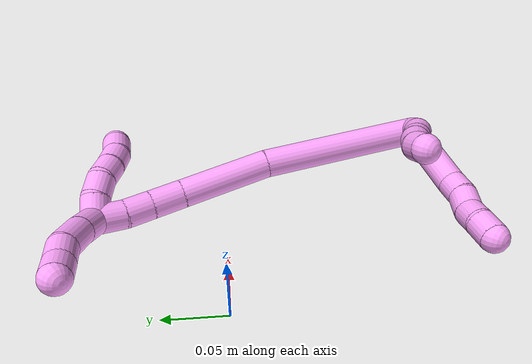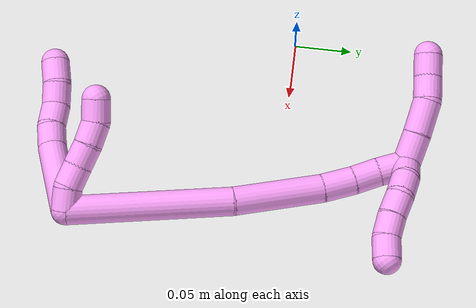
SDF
<sdf version="1.7">
 <world name="default">
  <model name="4">
   <static>0</static>
   <link name="4">
    <collision name="collision-cylinder-e_1_2_8">
     <pose>-0.016636 -0.003118 -0.029943 3.03785 -0.504855 -2.74433</pose>
     <geometry><cylinder><radius>0.0125</radius><length>0.068791</length></cylinder></geometry>
     <surface>
      <friction><ode><mu>1.16</mu><mu2>1.16</mu2><slip1>0</slip1><slip2>0</slip2></ode></friction>
      <contact><ode><kp>1e+06</kp><kd>1</kd><max_vel>0</max_vel><min_depth>0.001</min_depth></ode></contact>
     </surface>
    </collision>
    <visual name="visual-cylinder-e_1_2_8">
     <pose>-0.016636 -0.003118 -0.029943 3.03785 -0.504855 -2.74433</pose>
     <geometry><cylinder><radius>0.0125</radius><length>0.068791</length></cylinder></geometry>
     <material><ambient>1 0.65098 0.996078 1</ambient></material>
    </visual>
    <collision name="collision-cylinder-e_2_8_9">
     <pose>-0.036642 -0.009907 -0.068576 2.74184 -0.34302 -1.41481</pose>
     <geometry><cylinder><radius>0.0125</radius><length>0.020036</length></cylinder></geometry>
     <surface>
      <friction><ode><mu>1.16</mu><mu2>1.16</mu2><slip1>0</slip1><slip2>0</slip2></ode></friction>
      <contact><ode><kp>1e+06</kp><kd>1</kd><max_vel>0</max_vel><min_depth>0.001</min_depth></ode></contact>
     </surface>
    </collision>
    <visual name="visual-cylinder-e_2_8_9">
     <pose>-0.036642 -0.009907 -0.068576 2.74184 -0.34302 -1.41481</pose>
     <geometry><cylinder><radius>0.0125</radius><length>0.020036</length></cylinder></geometry>
     <material><ambient>1 0.65098 0.996078 1</ambient></material>
    </visual>
    <collision name="collision-cylinder-e_3_9_10">
     <pose>-0.045392 -0.018161 -0.084599 2.58307 -0.556603 -1.56716</pose>
     <geometry><cylinder><radius>0.0125</radius><length>0.020367</length></cylinder></geometry>
     <surface>
      <friction><ode><mu>1.16</mu><mu2>1.16</mu2><slip1>0</slip1><slip2>0</slip2></ode></friction>
      <contact><ode><kp>1e+06</kp><kd>1</kd><max_vel>0</max_vel><min_depth>0.001</min_depth></ode></contact>
     </surface>
    </collision>
    <visual name="visual-cylinder-e_3_9_10">
     <pose>-0.045392 -0.018161 -0.084599 2.58307 -0.556603 -1.56716</pose>
     <geometry><cylinder><radius>0.0125</radius><length>0.020367</length></cylinder></geometry>
     <material><ambient>1 0.65098 0.996078 1</ambient></material>
    </visual>
    <collision name="collision-cylinder-e_4_10_11">
     <pose>-0.052935 -0.028258 -0.100265 2.55698 -0.213166 -0.68319</pose>
     <geometry><cylinder><radius>0.0125</radius><length>0.02045</length></cylinder></geometry>
     <surface>
      <friction><ode><mu>1.16</mu><mu2>1.16</mu2><slip1>0</slip1><slip2>0</slip2></ode></friction>
      <contact><ode><kp>1e+06</kp><kd>1</kd><max_vel>0</max_vel><min_depth>0.001</min_depth></ode></contact>
     </surface>
    </collision>
    <visual name="visual-cylinder-e_4_10_11">
     <pose>-0.052935 -0.028258 -0.100265 2.55698 -0.213166 -0.68319</pose>
     <geometry><cylinder><radius>0.0125</radius><length>0.02045</length></cylinder></geometry>
     <material><ambient>1 0.65098 0.996078 1</ambient></material>
    </visual>
    <collision name="collision-cylinder-e_5_11_6">
     <pose>-0.058379 -0.03724 -0.117588 2.77348 -0.328211 -1.454</pose>
     <geometry><cylinder><radius>0.0125</radius><length>0.020356</length></cylinder></geometry>
     <surface>
      <friction><ode><mu>1.16</mu><mu2>1.16</mu2><slip1>0</slip1><slip2>0</slip2></ode></friction>
      <contact><ode><kp>1e+06</kp><kd>1</kd><max_vel>0</max_vel><min_depth>0.001</min_depth></ode></contact>
     </surface>
    </collision>
    <visual name="visual-cylinder-e_5_11_6">
     <pose>-0.058379 -0.03724 -0.117588 2.77348 -0.328211 -1.454</pose>
     <geometry><cylinder><radius>0.0125</radius><length>0.020356</length></cylinder></geometry>
     <material><ambient>1 0.65098 0.996078 1</ambient></material>
    </visual>
    <collision name="collision-cylinder-e_1_2_12">
     <pose>0.000109 -0.007025 -0.007116 2.36263 0.010948 0.026673</pose>
     <geometry><cylinder><radius>0.0125</radius><length>0.02</length></cylinder></geometry>
     <surface>
      <friction><ode><mu>1.16</mu><mu2>1.16</mu2><slip1>0</slip1><slip2>0</slip2></ode></friction>
      <contact><ode><kp>1e+06</kp><kd>1</kd><max_vel>0</max_vel><min_depth>0.001</min_depth></ode></contact>
     </surface>
    </collision>
    <visual name="visual-cylinder-e_1_2_12">
     <pose>0.000109 -0.007025 -0.007116 2.36263 0.010948 0.026673</pose>
     <geometry><cylinder><radius>0.0125</radius><length>0.02</length></cylinder></geometry>
     <material><ambient>1 0.65098 0.996078 1</ambient></material>
    </visual>
    <collision name="collision-cylinder-e_2_12_13">
     <pose>-0.002312 -0.022221 -0.019411 2.13569 -0.255867 -0.459396</pose>
     <geometry><cylinder><radius>0.0125</radius><length>0.02</length></cylinder></geometry>
     <surface>
      <friction><ode><mu>1.16</mu><mu2>1.16</mu2><slip1>0</slip1><slip2>0</slip2></ode></friction>
      <contact><ode><kp>1e+06</kp><kd>1</kd><max_vel>0</max_vel><min_depth>0.001</min_depth></ode></contact>
     </surface>
    </collision>
    <visual name="visual-cylinder-e_2_12_13">
     <pose>-0.002312 -0.022221 -0.019411 2.13569 -0.255867 -0.459396</pose>
     <geometry><cylinder><radius>0.0125</radius><length>0.02</length></cylinder></geometry>
     <material><ambient>1 0.65098 0.996078 1</ambient></material>
    </visual>
    <collision name="collision-cylinder-e_3_13_14">
     <pose>-0.006665 -0.038944 -0.029444 2.08703 -0.183233 -0.312989</pose>
     <geometry><cylinder><radius>0.0125</radius><length>0.02</length></cylinder></geometry>
     <surface>
      <friction><ode><mu>1.16</mu><mu2>1.16</mu2><slip1>0</slip1><slip2>0</slip2></ode></friction>
      <contact><ode><kp>1e+06</kp><kd>1</kd><max_vel>0</max_vel><min_depth>0.001</min_depth></ode></contact>
     </surface>
    </collision>
    <visual name="visual-cylinder-e_3_13_14">
     <pose>-0.006665 -0.038944 -0.029444 2.08703 -0.183233 -0.312989</pose>
     <geometry><cylinder><radius>0.0125</radius><length>0.02</length></cylinder></geometry>
     <material><ambient>1 0.65098 0.996078 1</ambient></material>
    </visual>
    <collision name="collision-cylinder-e_4_14_15">
     <pose>-0.010814 -0.055211 -0.040218 2.22531 -0.234824 -0.469565</pose>
     <geometry><cylinder><radius>0.0125</radius><length>0.02</length></cylinder></geometry>
     <surface>
      <friction><ode><mu>1.16</mu><mu2>1.16</mu2><slip1>0</slip1><slip2>0</slip2></ode></friction>
      <contact><ode><kp>1e+06</kp><kd>1</kd><max_vel>0</max_vel><min_depth>0.001</min_depth></ode></contact>
     </surface>
    </collision>
    <visual name="visual-cylinder-e_4_14_15">
     <pose>-0.010814 -0.055211 -0.040218 2.22531 -0.234824 -0.469565</pose>
     <geometry><cylinder><radius>0.0125</radius><length>0.02</length></cylinder></geometry>
     <material><ambient>1 0.65098 0.996078 1</ambient></material>
    </visual>
    <collision name="collision-cylinder-e_5_15_5">
     <pose>-0.013229 -0.069054 -0.054041 2.48211 -0.008827 -0.025791</pose>
     <geometry><cylinder><radius>0.0125</radius><length>0.02</length></cylinder></geometry>
     <surface>
      <friction><ode><mu>1.16</mu><mu2>1.16</mu2><slip1>0</slip1><slip2>0</slip2></ode></friction>
      <contact><ode><kp>1e+06</kp><kd>1</kd><max_vel>0</max_vel><min_depth>0.001</min_depth></ode></contact>
     </surface>
    </collision>
    <visual name="visual-cylinder-e_5_15_5">
     <pose>-0.013229 -0.069054 -0.054041 2.48211 -0.008827 -0.025791</pose>
     <geometry><cylinder><radius>0.0125</radius><length>0.02</length></cylinder></geometry>
     <material><ambient>1 0.65098 0.996078 1</ambient></material>
    </visual>
    <collision name="collision-cylinder-e_1_2_16">
     <pose>-0.035514 -0.051922 0.034658 0.982219 -0.517224 -0.28109</pose>
     <geometry><cylinder><radius>0.0125</radius><length>0.143643</length></cylinder></geometry>
     <surface>
      <friction><ode><mu>1.16</mu><mu2>1.16</mu2><slip1>0</slip1><slip2>0</slip2></ode></friction>
      <contact><ode><kp>1e+06</kp><kd>1</kd><max_vel>0</max_vel><min_depth>0.001</min_depth></ode></contact>
     </surface>
    </collision>
    <visual name="visual-cylinder-e_1_2_16">
     <pose>-0.035514 -0.051922 0.034658 0.982219 -0.517224 -0.28109</pose>
     <geometry><cylinder><radius>0.0125</radius><length>0.143643</length></cylinder></geometry>
     <material><ambient>1 0.65098 0.996078 1</ambient></material>
    </visual>
    <collision name="collision-cylinder-e_2_16_17">
     <pose>-0.094105 -0.13236 0.084372 1.08501 -0.621167 -0.382264</pose>
     <geometry><cylinder><radius>0.0125</radius><length>0.079306</length></cylinder></geometry>
     <surface>
      <friction><ode><mu>1.16</mu><mu2>1.16</mu2><slip1>0</slip1><slip2>0</slip2></ode></friction>
      <contact><ode><kp>1e+06</kp><kd>1</kd><max_vel>0</max_vel><min_depth>0.001</min_depth></ode></contact>
     </surface>
    </collision>
    <visual name="visual-cylinder-e_2_16_17">
     <pose>-0.094105 -0.13236 0.084372 1.08501 -0.621167 -0.382264</pose>
     <geometry><cylinder><radius>0.0125</radius><length>0.079306</length></cylinder></geometry>
     <material><ambient>1 0.65098 0.996078 1</ambient></material>
    </visual>
    <collision name="collision-cylinder-e_3_17_18">
     <pose>-0.125134 -0.172052 0.103674 1.20769 -0.586894 -0.410987</pose>
     <geometry><cylinder><radius>0.0125</radius><length>0.028718</length></cylinder></geometry>
     <surface>
      <friction><ode><mu>1.16</mu><mu2>1.16</mu2><slip1>0</slip1><slip2>0</slip2></ode></friction>
      <contact><ode><kp>1e+06</kp><kd>1</kd><max_vel>0</max_vel><min_depth>0.001</min_depth></ode></contact>
     </surface>
    </collision>
    <visual name="visual-cylinder-e_3_17_18">
     <pose>-0.125134 -0.172052 0.103674 1.20769 -0.586894 -0.410987</pose>
     <geometry><cylinder><radius>0.0125</radius><length>0.028718</length></cylinder></geometry>
     <material><ambient>1 0.65098 0.996078 1</ambient></material>
    </visual>
    <collision name="collision-cylinder-e_4_18_19">
     <pose>-0.139254 -0.19284 0.110648 1.29436 -0.55313 -0.422626</pose>
     <geometry><cylinder><radius>0.0125</radius><length>0.023482</length></cylinder></geometry>
     <surface>
      <friction><ode><mu>1.16</mu><mu2>1.16</mu2><slip1>0</slip1><slip2>0</slip2></ode></friction>
      <contact><ode><kp>1e+06</kp><kd>1</kd><max_vel>0</max_vel><min_depth>0.001</min_depth></ode></contact>
     </surface>
    </collision>
    <visual name="visual-cylinder-e_4_18_19">
     <pose>-0.139254 -0.19284 0.110648 1.29436 -0.55313 -0.422626</pose>
     <geometry><cylinder><radius>0.0125</radius><length>0.023482</length></cylinder></geometry>
     <material><ambient>1 0.65098 0.996078 1</ambient></material>
    </visual>
    <collision name="collision-cylinder-e_5_19_1">
     <pose>-0.150589 -0.213047 0.1173 1.21594 -0.428881 -0.300831</pose>
     <geometry><cylinder><radius>0.0125</radius><length>0.024851</length></cylinder></geometry>
     <surface>
      <friction><ode><mu>1.16</mu><mu2>1.16</mu2><slip1>0</slip1><slip2>0</slip2></ode></friction>
      <contact><ode><kp>1e+06</kp><kd>1</kd><max_vel>0</max_vel><min_depth>0.001</min_depth></ode></contact>
     </surface>
    </collision>
    <visual name="visual-cylinder-e_5_19_1">
     <pose>-0.150589 -0.213047 0.1173 1.21594 -0.428881 -0.300831</pose>
     <geometry><cylinder><radius>0.0125</radius><length>0.024851</length></cylinder></geometry>
     <material><ambient>1 0.65098 0.996078 1</ambient></material>
    </visual>
    <collision name="collision-cylinder-e_1_1_20">
     <pose>-0.14792 -0.222364 0.127306 -0.207295 0.900481 -0.100472</pose>
     <geometry><cylinder><radius>0.0125</radius><length>0.02</length></cylinder></geometry>
     <surface>
      <friction><ode><mu>1.16</mu><mu2>1.16</mu2><slip1>0</slip1><slip2>0</slip2></ode></friction>
      <contact><ode><kp>1e+06</kp><kd>1</kd><max_vel>0</max_vel><min_depth>0.001</min_depth></ode></contact>
     </surface>
    </collision>
    <visual name="visual-cylinder-e_1_1_20">
     <pose>-0.14792 -0.222364 0.127306 -0.207295 0.900481 -0.100472</pose>
     <geometry><cylinder><radius>0.0125</radius><length>0.02</length></cylinder></geometry>
     <material><ambient>1 0.65098 0.996078 1</ambient></material>
    </visual>
    <collision name="collision-cylinder-e_2_20_21">
     <pose>-0.132862 -0.216997 0.138966 -0.632284 0.806889 -0.277468</pose>
     <geometry><cylinder><radius>0.0125</radius><length>0.02</length></cylinder></geometry>
     <surface>
      <friction><ode><mu>1.16</mu><mu2>1.16</mu2><slip1>0</slip1><slip2>0</slip2></ode></friction>
      <contact><ode><kp>1e+06</kp><kd>1</kd><max_vel>0</max_vel><min_depth>0.001</min_depth></ode></contact>
     </surface>
    </collision>
    <visual name="visual-cylinder-e_2_20_21">
     <pose>-0.132862 -0.216997 0.138966 -0.632284 0.806889 -0.277468</pose>
     <geometry><cylinder><radius>0.0125</radius><length>0.02</length></cylinder></geometry>
     <material><ambient>1 0.65098 0.996078 1</ambient></material>
    </visual>
    <collision name="collision-cylinder-e_3_21_22">
     <pose>-0.120621 -0.206366 0.150202 -0.857979 0.525929 -0.245029</pose>
     <geometry><cylinder><radius>0.0125</radius><length>0.02</length></cylinder></geometry>
     <surface>
      <friction><ode><mu>1.16</mu><mu2>1.16</mu2><slip1>0</slip1><slip2>0</slip2></ode></friction>
      <contact><ode><kp>1e+06</kp><kd>1</kd><max_vel>0</max_vel><min_depth>0.001</min_depth></ode></contact>
     </surface>
    </collision>
    <visual name="visual-cylinder-e_3_21_22">
     <pose>-0.120621 -0.206366 0.150202 -0.857979 0.525929 -0.245029</pose>
     <geometry><cylinder><radius>0.0125</radius><length>0.02</length></cylinder></geometry>
     <material><ambient>1 0.65098 0.996078 1</ambient></material>
    </visual>
    <collision name="collision-cylinder-e_4_22_23">
     <pose>-0.111273 -0.193693 0.162467 -0.747823 0.447519 -0.178111</pose>
     <geometry><cylinder><radius>0.0125</radius><length>0.02</length></cylinder></geometry>
     <surface>
      <friction><ode><mu>1.16</mu><mu2>1.16</mu2><slip1>0</slip1><slip2>0</slip2></ode></friction>
      <contact><ode><kp>1e+06</kp><kd>1</kd><max_vel>0</max_vel><min_depth>0.001</min_depth></ode></contact>
     </surface>
    </collision>
    <visual name="visual-cylinder-e_4_22_23">
     <pose>-0.111273 -0.193693 0.162467 -0.747823 0.447519 -0.178111</pose>
     <geometry><cylinder><radius>0.0125</radius><length>0.02</length></cylinder></geometry>
     <material><ambient>1 0.65098 0.996078 1</ambient></material>
    </visual>
    <collision name="collision-cylinder-e_5_23_4">
     <pose>-0.103307 -0.183357 0.177388 -0.468413 0.372386 -0.089826</pose>
     <geometry><cylinder><radius>0.0125</radius><length>0.02</length></cylinder></geometry>
     <surface>
      <friction><ode><mu>1.16</mu><mu2>1.16</mu2><slip1>0</slip1><slip2>0</slip2></ode></friction>
      <contact><ode><kp>1e+06</kp><kd>1</kd><max_vel>0</max_vel><min_depth>0.001</min_depth></ode></contact>
     </surface>
    </collision>
    <visual name="visual-cylinder-e_5_23_4">
     <pose>-0.103307 -0.183357 0.177388 -0.468413 0.372386 -0.089826</pose>
     <geometry><cylinder><radius>0.0125</radius><length>0.02</length></cylinder></geometry>
     <material><ambient>1 0.65098 0.996078 1</ambient></material>
    </visual>
    <collision name="collision-cylinder-e_1_1_24">
     <pose>-0.158403 -0.234864 0.113182 2.19277 -0.189395 -0.365784</pose>
     <geometry><cylinder><radius>0.0125</radius><length>0.028117</length></cylinder></geometry>
     <surface>
      <friction><ode><mu>1.16</mu><mu2>1.16</mu2><slip1>0</slip1><slip2>0</slip2></ode></friction>
      <contact><ode><kp>1e+06</kp><kd>1</kd><max_vel>0</max_vel><min_depth>0.001</min_depth></ode></contact>
     </surface>
    </collision>
    <visual name="visual-cylinder-e_1_1_24">
     <pose>-0.158403 -0.234864 0.113182 2.19277 -0.189395 -0.365784</pose>
     <geometry><cylinder><radius>0.0125</radius><length>0.028117</length></cylinder></geometry>
     <material><ambient>1 0.65098 0.996078 1</ambient></material>
    </visual>
    <collision name="collision-cylinder-e_2_24_25">
     <pose>-0.164501 -0.257674 0.09559 2.25993 -0.225921 -0.47194</pose>
     <geometry><cylinder><radius>0.0125</radius><length>0.030813</length></cylinder></geometry>
     <surface>
      <friction><ode><mu>1.16</mu><mu2>1.16</mu2><slip1>0</slip1><slip2>0</slip2></ode></friction>
      <contact><ode><kp>1e+06</kp><kd>1</kd><max_vel>0</max_vel><min_depth>0.001</min_depth></ode></contact>
     </surface>
    </collision>
    <visual name="visual-cylinder-e_2_24_25">
     <pose>-0.164501 -0.257674 0.09559 2.25993 -0.225921 -0.47194</pose>
     <geometry><cylinder><radius>0.0125</radius><length>0.030813</length></cylinder></geometry>
     <material><ambient>1 0.65098 0.996078 1</ambient></material>
    </visual>
    <collision name="collision-cylinder-e_3_25_26">
     <pose>-0.171228 -0.27448 0.077538 2.59129 -0.31728 -1.03114</pose>
     <geometry><cylinder><radius>0.0125</radius><length>0.021004</length></cylinder></geometry>
     <surface>
      <friction><ode><mu>1.16</mu><mu2>1.16</mu2><slip1>0</slip1><slip2>0</slip2></ode></friction>
      <contact><ode><kp>1e+06</kp><kd>1</kd><max_vel>0</max_vel><min_depth>0.001</min_depth></ode></contact>
     </surface>
    </collision>
    <visual name="visual-cylinder-e_3_25_26">
     <pose>-0.171228 -0.27448 0.077538 2.59129 -0.31728 -1.03114</pose>
     <geometry><cylinder><radius>0.0125</radius><length>0.021004</length></cylinder></geometry>
     <material><ambient>1 0.65098 0.996078 1</ambient></material>
    </visual>
    <collision name="collision-cylinder-e_4_26_3">
     <pose>-0.176611 -0.285064 0.060821 2.56285 -0.211519 -0.684995</pose>
     <geometry><cylinder><radius>0.0125</radius><length>0.020066</length></cylinder></geometry>
     <surface>
      <friction><ode><mu>1.16</mu><mu2>1.16</mu2><slip1>0</slip1><slip2>0</slip2></ode></friction>
      <contact><ode><kp>1e+06</kp><kd>1</kd><max_vel>0</max_vel><min_depth>0.001</min_depth></ode></contact>
     </surface>
    </collision>
    <visual name="visual-cylinder-e_4_26_3">
     <pose>-0.176611 -0.285064 0.060821 2.56285 -0.211519 -0.684995</pose>
     <geometry><cylinder><radius>0.0125</radius><length>0.020066</length></cylinder></geometry>
     <material><ambient>1 0.65098 0.996078 1</ambient></material>
    </visual>
    <collision name="collision-sphere-3">
     <pose>-0.178717 -0.290429 0.052609 0 -0 0</pose>
     <geometry><sphere><radius>0.0125</radius></sphere></geometry>
     <surface>
      <friction><ode><mu>1.16</mu><mu2>1.16</mu2><slip1>0</slip1><slip2>0</slip2></ode></friction>
      <contact><ode><kp>1e+06</kp><kd>1</kd><max_vel>0</max_vel><min_depth>0.001</min_depth></ode></contact>
     </surface>
    </collision>
    <visual name="visual-sphere-3">
     <pose>-0.178717 -0.290429 0.052609 0 -0 0</pose>
     <geometry><sphere><radius>0.0125</radius></sphere></geometry>
     <material><ambient>1 0.65098 0.996078 1</ambient></material>
    </visual>
    <collision name="collision-sphere-26">
     <pose>-0.174505 -0.279698 0.069033 0 -0 0</pose>
     <geometry><sphere><radius>0.0125</radius></sphere></geometry>
     <surface>
      <friction><ode><mu>1.16</mu><mu2>1.16</mu2><slip1>0</slip1><slip2>0</slip2></ode></friction>
      <contact><ode><kp>1e+06</kp><kd>1</kd><max_vel>0</max_vel><min_depth>0.001</min_depth></ode></contact>
     </surface>
    </collision>
    <visual name="visual-sphere-26">
     <pose>-0.174505 -0.279698 0.069033 0 -0 0</pose>
     <geometry><sphere><radius>0.0125</radius></sphere></geometry>
     <material><ambient>1 0.65098 0.996078 1</ambient></material>
    </visual>
    <collision name="collision-sphere-25">
     <pose>-0.167952 -0.269262 0.086043 0 -0 0</pose>
     <geometry><sphere><radius>0.0125</radius></sphere></geometry>
     <surface>
      <friction><ode><mu>1.16</mu><mu2>1.16</mu2><slip1>0</slip1><slip2>0</slip2></ode></friction>
      <contact><ode><kp>1e+06</kp><kd>1</kd><max_vel>0</max_vel><min_depth>0.001</min_depth></ode></contact>
     </surface>
    </collision>
    <visual name="visual-sphere-25">
     <pose>-0.167952 -0.269262 0.086043 0 -0 0</pose>
     <geometry><sphere><radius>0.0125</radius></sphere></geometry>
     <material><ambient>1 0.65098 0.996078 1</ambient></material>
    </visual>
    <collision name="collision-sphere-24">
     <pose>-0.16105 -0.246086 0.105138 0 -0 0</pose>
     <geometry><sphere><radius>0.0125</radius></sphere></geometry>
     <surface>
      <friction><ode><mu>1.16</mu><mu2>1.16</mu2><slip1>0</slip1><slip2>0</slip2></ode></friction>
      <contact><ode><kp>1e+06</kp><kd>1</kd><max_vel>0</max_vel><min_depth>0.001</min_depth></ode></contact>
     </surface>
    </collision>
    <visual name="visual-sphere-24">
     <pose>-0.16105 -0.246086 0.105138 0 -0 0</pose>
     <geometry><sphere><radius>0.0125</radius></sphere></geometry>
     <material><ambient>1 0.65098 0.996078 1</ambient></material>
    </visual>
    <collision name="collision-sphere-4">
     <pose>-0.099669 -0.179151 0.1857 0 -0 0</pose>
     <geometry><sphere><radius>0.0125</radius></sphere></geometry>
     <surface>
      <friction><ode><mu>1.16</mu><mu2>1.16</mu2><slip1>0</slip1><slip2>0</slip2></ode></friction>
      <contact><ode><kp>1e+06</kp><kd>1</kd><max_vel>0</max_vel><min_depth>0.001</min_depth></ode></contact>
     </surface>
    </collision>
    <visual name="visual-sphere-4">
     <pose>-0.099669 -0.179151 0.1857 0 -0 0</pose>
     <geometry><sphere><radius>0.0125</radius></sphere></geometry>
     <material><ambient>1 0.65098 0.996078 1</ambient></material>
    </visual>
    <collision name="collision-sphere-23">
     <pose>-0.106946 -0.187562 0.169077 0 -0 0</pose>
     <geometry><sphere><radius>0.0125</radius></sphere></geometry>
     <surface>
      <friction><ode><mu>1.16</mu><mu2>1.16</mu2><slip1>0</slip1><slip2>0</slip2></ode></friction>
      <contact><ode><kp>1e+06</kp><kd>1</kd><max_vel>0</max_vel><min_depth>0.001</min_depth></ode></contact>
     </surface>
    </collision>
    <visual name="visual-sphere-23">
     <pose>-0.106946 -0.187562 0.169077 0 -0 0</pose>
     <geometry><sphere><radius>0.0125</radius></sphere></geometry>
     <material><ambient>1 0.65098 0.996078 1</ambient></material>
    </visual>
    <collision name="collision-sphere-22">
     <pose>-0.1156 -0.199823 0.155858 0 -0 0</pose>
     <geometry><sphere><radius>0.0125</radius></sphere></geometry>
     <surface>
      <friction><ode><mu>1.16</mu><mu2>1.16</mu2><slip1>0</slip1><slip2>0</slip2></ode></friction>
      <contact><ode><kp>1e+06</kp><kd>1</kd><max_vel>0</max_vel><min_depth>0.001</min_depth></ode></contact>
     </surface>
    </collision>
    <visual name="visual-sphere-22">
     <pose>-0.1156 -0.199823 0.155858 0 -0 0</pose>
     <geometry><sphere><radius>0.0125</radius></sphere></geometry>
     <material><ambient>1 0.65098 0.996078 1</ambient></material>
    </visual>
    <collision name="collision-sphere-21">
     <pose>-0.125641 -0.212909 0.144546 0 -0 0</pose>
     <geometry><sphere><radius>0.0125</radius></sphere></geometry>
     <surface>
      <friction><ode><mu>1.16</mu><mu2>1.16</mu2><slip1>0</slip1><slip2>0</slip2></ode></friction>
      <contact><ode><kp>1e+06</kp><kd>1</kd><max_vel>0</max_vel><min_depth>0.001</min_depth></ode></contact>
     </surface>
    </collision>
    <visual name="visual-sphere-21">
     <pose>-0.125641 -0.212909 0.144546 0 -0 0</pose>
     <geometry><sphere><radius>0.0125</radius></sphere></geometry>
     <material><ambient>1 0.65098 0.996078 1</ambient></material>
    </visual>
    <collision name="collision-sphere-20">
     <pose>-0.140084 -0.221085 0.133385 0 -0 0</pose>
     <geometry><sphere><radius>0.0125</radius></sphere></geometry>
     <surface>
      <friction><ode><mu>1.16</mu><mu2>1.16</mu2><slip1>0</slip1><slip2>0</slip2></ode></friction>
      <contact><ode><kp>1e+06</kp><kd>1</kd><max_vel>0</max_vel><min_depth>0.001</min_depth></ode></contact>
     </surface>
    </collision>
    <visual name="visual-sphere-20">
     <pose>-0.140084 -0.221085 0.133385 0 -0 0</pose>
     <geometry><sphere><radius>0.0125</radius></sphere></geometry>
     <material><ambient>1 0.65098 0.996078 1</ambient></material>
    </visual>
    <collision name="collision-sphere-6">
     <pose>-0.06166 -0.040707 -0.126578 0 -0 0</pose>
     <geometry><sphere><radius>0.0125</radius></sphere></geometry>
     <surface>
      <friction><ode><mu>1.16</mu><mu2>1.16</mu2><slip1>0</slip1><slip2>0</slip2></ode></friction>
      <contact><ode><kp>1e+06</kp><kd>1</kd><max_vel>0</max_vel><min_depth>0.001</min_depth></ode></contact>
     </surface>
    </collision>
    <visual name="visual-sphere-6">
     <pose>-0.06166 -0.040707 -0.126578 0 -0 0</pose>
     <geometry><sphere><radius>0.0125</radius></sphere></geometry>
     <material><ambient>1 0.65098 0.996078 1</ambient></material>
    </visual>
    <collision name="collision-sphere-11">
     <pose>-0.055098 -0.033773 -0.108599 0 -0 0</pose>
     <geometry><sphere><radius>0.0125</radius></sphere></geometry>
     <surface>
      <friction><ode><mu>1.16</mu><mu2>1.16</mu2><slip1>0</slip1><slip2>0</slip2></ode></friction>
      <contact><ode><kp>1e+06</kp><kd>1</kd><max_vel>0</max_vel><min_depth>0.001</min_depth></ode></contact>
     </surface>
    </collision>
    <visual name="visual-sphere-11">
     <pose>-0.055098 -0.033773 -0.108599 0 -0 0</pose>
     <geometry><sphere><radius>0.0125</radius></sphere></geometry>
     <material><ambient>1 0.65098 0.996078 1</ambient></material>
    </visual>
    <collision name="collision-sphere-10">
     <pose>-0.050772 -0.022743 -0.091931 0 -0 0</pose>
     <geometry><sphere><radius>0.0125</radius></sphere></geometry>
     <surface>
      <friction><ode><mu>1.16</mu><mu2>1.16</mu2><slip1>0</slip1><slip2>0</slip2></ode></friction>
      <contact><ode><kp>1e+06</kp><kd>1</kd><max_vel>0</max_vel><min_depth>0.001</min_depth></ode></contact>
     </surface>
    </collision>
    <visual name="visual-sphere-10">
     <pose>-0.050772 -0.022743 -0.091931 0 -0 0</pose>
     <geometry><sphere><radius>0.0125</radius></sphere></geometry>
     <material><ambient>1 0.65098 0.996078 1</ambient></material>
    </visual>
    <collision name="collision-sphere-9">
     <pose>-0.040012 -0.013579 -0.077266 0 -0 0</pose>
     <geometry><sphere><radius>0.0125</radius></sphere></geometry>
     <surface>
      <friction><ode><mu>1.16</mu><mu2>1.16</mu2><slip1>0</slip1><slip2>0</slip2></ode></friction>
      <contact><ode><kp>1e+06</kp><kd>1</kd><max_vel>0</max_vel><min_depth>0.001</min_depth></ode></contact>
     </surface>
    </collision>
    <visual name="visual-sphere-9">
     <pose>-0.040012 -0.013579 -0.077266 0 -0 0</pose>
     <geometry><sphere><radius>0.0125</radius></sphere></geometry>
     <material><ambient>1 0.65098 0.996078 1</ambient></material>
    </visual>
    <collision name="collision-sphere-2">
     <geometry><sphere><radius>0.0125</radius></sphere></geometry>
     <surface>
      <friction><ode><mu>1.16</mu><mu2>1.16</mu2><slip1>0</slip1><slip2>0</slip2></ode></friction>
      <contact><ode><kp>1e+06</kp><kd>1</kd><max_vel>0</max_vel><min_depth>0.001</min_depth></ode></contact>
     </surface>
    </collision>
    <visual name="visual-sphere-2">
     <geometry><sphere><radius>0.0125</radius></sphere></geometry>
     <material><ambient>1 0.65098 0.996078 1</ambient></material>
    </visual>
    <collision name="collision-sphere-19">
     <pose>-0.145422 -0.20245 0.113374 0 -0 0</pose>
     <geometry><sphere><radius>0.0125</radius></sphere></geometry>
     <surface>
      <friction><ode><mu>1.16</mu><mu2>1.16</mu2><slip1>0</slip1><slip2>0</slip2></ode></friction>
      <contact><ode><kp>1e+06</kp><kd>1</kd><max_vel>0</max_vel><min_depth>0.001</min_depth></ode></contact>
     </surface>
    </collision>
    <visual name="visual-sphere-19">
     <pose>-0.145422 -0.20245 0.113374 0 -0 0</pose>
     <geometry><sphere><radius>0.0125</radius></sphere></geometry>
     <material><ambient>1 0.65098 0.996078 1</ambient></material>
    </visual>
    <collision name="collision-sphere-8">
     <pose>-0.033273 -0.006235 -0.059885 0 -0 0</pose>
     <geometry><sphere><radius>0.0125</radius></sphere></geometry>
     <surface>
      <friction><ode><mu>1.16</mu><mu2>1.16</mu2><slip1>0</slip1><slip2>0</slip2></ode></friction>
      <contact><ode><kp>1e+06</kp><kd>1</kd><max_vel>0</max_vel><min_depth>0.001</min_depth></ode></contact>
     </surface>
    </collision>
    <visual name="visual-sphere-8">
     <pose>-0.033273 -0.006235 -0.059885 0 -0 0</pose>
     <geometry><sphere><radius>0.0125</radius></sphere></geometry>
     <material><ambient>1 0.65098 0.996078 1</ambient></material>
    </visual>
    <collision name="collision-sphere-12">
     <pose>0.000219 -0.01405 -0.014232 0 -0 0</pose>
     <geometry><sphere><radius>0.0125</radius></sphere></geometry>
     <surface>
      <friction><ode><mu>1.16</mu><mu2>1.16</mu2><slip1>0</slip1><slip2>0</slip2></ode></friction>
      <contact><ode><kp>1e+06</kp><kd>1</kd><max_vel>0</max_vel><min_depth>0.001</min_depth></ode></contact>
     </surface>
    </collision>
    <visual name="visual-sphere-12">
     <pose>0.000219 -0.01405 -0.014232 0 -0 0</pose>
     <geometry><sphere><radius>0.0125</radius></sphere></geometry>
     <material><ambient>1 0.65098 0.996078 1</ambient></material>
    </visual>
    <collision name="collision-sphere-13">
     <pose>-0.004843 -0.030393 -0.02459 0 -0 0</pose>
     <geometry><sphere><radius>0.0125</radius></sphere></geometry>
     <surface>
      <friction><ode><mu>1.16</mu><mu2>1.16</mu2><slip1>0</slip1><slip2>0</slip2></ode></friction>
      <contact><ode><kp>1e+06</kp><kd>1</kd><max_vel>0</max_vel><min_depth>0.001</min_depth></ode></contact>
     </surface>
    </collision>
    <visual name="visual-sphere-13">
     <pose>-0.004843 -0.030393 -0.02459 0 -0 0</pose>
     <geometry><sphere><radius>0.0125</radius></sphere></geometry>
     <material><ambient>1 0.65098 0.996078 1</ambient></material>
    </visual>
    <collision name="collision-sphere-14">
     <pose>-0.008487 -0.047495 -0.034297 0 -0 0</pose>
     <geometry><sphere><radius>0.0125</radius></sphere></geometry>
     <surface>
      <friction><ode><mu>1.16</mu><mu2>1.16</mu2><slip1>0</slip1><slip2>0</slip2></ode></friction>
      <contact><ode><kp>1e+06</kp><kd>1</kd><max_vel>0</max_vel><min_depth>0.001</min_depth></ode></contact>
     </surface>
    </collision>
    <visual name="visual-sphere-14">
     <pose>-0.008487 -0.047495 -0.034297 0 -0 0</pose>
     <geometry><sphere><radius>0.0125</radius></sphere></geometry>
     <material><ambient>1 0.65098 0.996078 1</ambient></material>
    </visual>
    <collision name="collision-sphere-15">
     <pose>-0.01314 -0.062927 -0.046138 0 -0 0</pose>
     <geometry><sphere><radius>0.0125</radius></sphere></geometry>
     <surface>
      <friction><ode><mu>1.16</mu><mu2>1.16</mu2><slip1>0</slip1><slip2>0</slip2></ode></friction>
      <contact><ode><kp>1e+06</kp><kd>1</kd><max_vel>0</max_vel><min_depth>0.001</min_depth></ode></contact>
     </surface>
    </collision>
    <visual name="visual-sphere-15">
     <pose>-0.01314 -0.062927 -0.046138 0 -0 0</pose>
     <geometry><sphere><radius>0.0125</radius></sphere></geometry>
     <material><ambient>1 0.65098 0.996078 1</ambient></material>
    </visual>
    <collision name="collision-sphere-5">
     <pose>-0.013317 -0.07518 -0.061944 0 -0 0</pose>
     <geometry><sphere><radius>0.0125</radius></sphere></geometry>
     <surface>
      <friction><ode><mu>1.16</mu><mu2>1.16</mu2><slip1>0</slip1><slip2>0</slip2></ode></friction>
      <contact><ode><kp>1e+06</kp><kd>1</kd><max_vel>0</max_vel><min_depth>0.001</min_depth></ode></contact>
     </surface>
    </collision>
    <visual name="visual-sphere-5">
     <pose>-0.013317 -0.07518 -0.061944 0 -0 0</pose>
     <geometry><sphere><radius>0.0125</radius></sphere></geometry>
     <material><ambient>1 0.65098 0.996078 1</ambient></material>
    </visual>
    <collision name="collision-sphere-16">
     <pose>-0.071027 -0.103845 0.069316 0 -0 0</pose>
     <geometry><sphere><radius>0.0125</radius></sphere></geometry>
     <surface>
      <friction><ode><mu>1.16</mu><mu2>1.16</mu2><slip1>0</slip1><slip2>0</slip2></ode></friction>
      <contact><ode><kp>1e+06</kp><kd>1</kd><max_vel>0</max_vel><min_depth>0.001</min_depth></ode></contact>
     </surface>
    </collision>
    <visual name="visual-sphere-16">
     <pose>-0.071027 -0.103845 0.069316 0 -0 0</pose>
     <geometry><sphere><radius>0.0125</radius></sphere></geometry>
     <material><ambient>1 0.65098 0.996078 1</ambient></material>
    </visual>
    <collision name="collision-sphere-17">
     <pose>-0.117182 -0.160876 0.099428 0 -0 0</pose>
     <geometry><sphere><radius>0.0125</radius></sphere></geometry>
     <surface>
      <friction><ode><mu>1.16</mu><mu2>1.16</mu2><slip1>0</slip1><slip2>0</slip2></ode></friction>
      <contact><ode><kp>1e+06</kp><kd>1</kd><max_vel>0</max_vel><min_depth>0.001</min_depth></ode></contact>
     </surface>
    </collision>
    <visual name="visual-sphere-17">
     <pose>-0.117182 -0.160876 0.099428 0 -0 0</pose>
     <geometry><sphere><radius>0.0125</radius></sphere></geometry>
     <material><ambient>1 0.65098 0.996078 1</ambient></material>
    </visual>
    <collision name="collision-sphere-18">
     <pose>-0.133086 -0.183229 0.107921 0 -0 0</pose>
     <geometry><sphere><radius>0.0125</radius></sphere></geometry>
     <surface>
      <friction><ode><mu>1.16</mu><mu2>1.16</mu2><slip1>0</slip1><slip2>0</slip2></ode></friction>
      <contact><ode><kp>1e+06</kp><kd>1</kd><max_vel>0</max_vel><min_depth>0.001</min_depth></ode></contact>
     </surface>
    </collision>
    <visual name="visual-sphere-18">
     <pose>-0.133086 -0.183229 0.107921 0 -0 0</pose>
     <geometry><sphere><radius>0.0125</radius></sphere></geometry>
     <material><ambient>1 0.65098 0.996078 1</ambient></material>
    </visual>
    <collision name="collision-sphere-1">
     <pose>-0.155756 -0.223643 0.121227 0 -0 0</pose>
     <geometry><sphere><radius>0.0125</radius></sphere></geometry>
     <surface>
      <friction><ode><mu>1.16</mu><mu2>1.16</mu2><slip1>0</slip1><slip2>0</slip2></ode></friction>
      <contact><ode><kp>1e+06</kp><kd>1</kd><max_vel>0</max_vel><min_depth>0.001</min_depth></ode></contact>
     </surface>
    </collision>
    <visual name="visual-sphere-1">
     <pose>-0.155756 -0.223643 0.121227 0 -0 0</pose>
     <geometry><sphere><radius>0.0125</radius></sphere></geometry>
     <material><ambient>1 0.65098 0.996078 1</ambient></material>
    </visual>
    <inertial>
     <pose>-0.07718 -0.113561 0.042211 0 -0 0</pose>
     <mass>0.75</mass>
     <inertia>
      <ixx>0.000133</ixx>
      <ixy>0</ixy>
      <ixz>0</ixz>
      <iyy>9.2e-05</iyy>
      <iyz>0</iyz>
      <izz>0.000399</izz>
     </inertia>
    </inertial>
   </link>
   <pose>0.191347 -0.176721 0.033195 -1.75814 -0.987025 -0.709213</pose>
  </model>
 </world>
</sdf>
